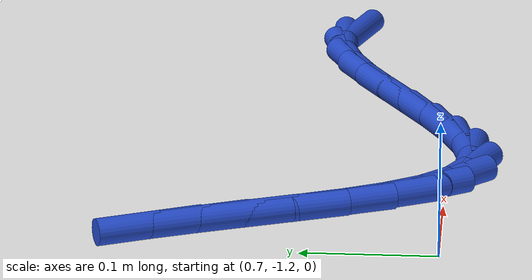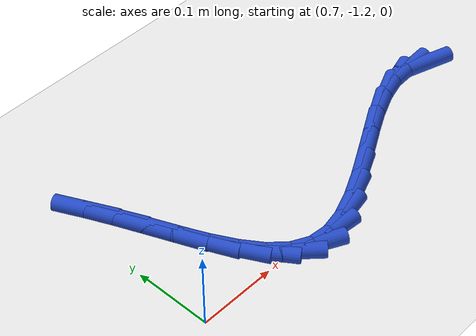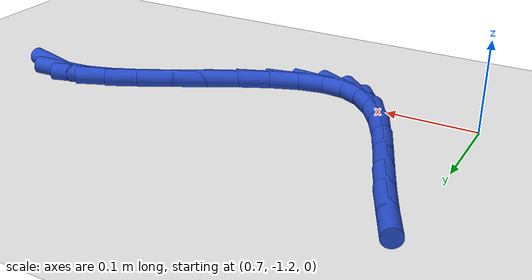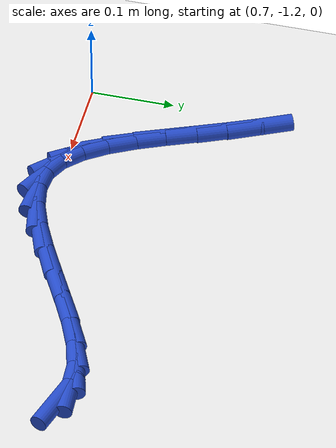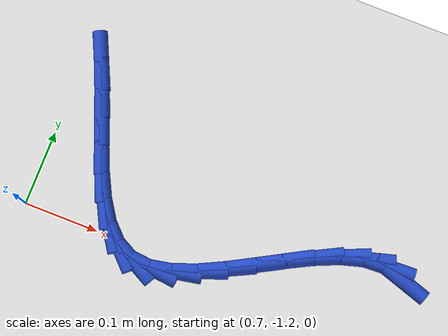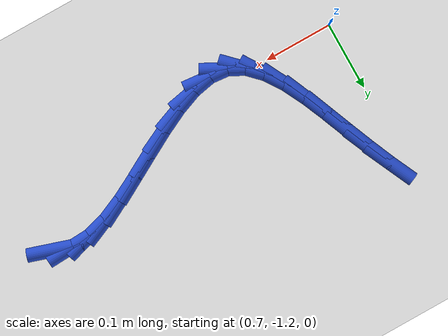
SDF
<sdf version="1.6">
 <world name="default">
  <model name="ground_plane">
   <static>1</static>
   <link name="link">
    <collision name="collision">
     <geometry><plane><normal>0 0 1</normal><size>100 100</size></plane></geometry>
     <surface><friction><ode><mu>100</mu><mu2>50</mu2></ode></friction></surface>
    </collision>
    <visual name="visual">
     <cast_shadows>0</cast_shadows>
     <geometry><plane><normal>0 0 1</normal><size>100 100</size></plane></geometry>
     <material>
      <script><uri>file://media/materials/scripts/gazebo.material</uri><name>Gazebo/WhiteGlow</name></script>
     </material>
    </visual>
   </link>
  </model>
  <model name="line">
   <link name="link_180">
    <pose>1.1868459505623645 -1.1132919554897285 0.01 0 1.57 -0.30919328654308004</pose>
    <collision name="collision">
     <geometry><cylinder><radius>0.01</radius><length>0.08</length></cylinder></geometry>
    </collision>
    <visual name="visual">
     <material>
      <script><name>Gazebo/Blue</name><uri>file://media/materials/scripts/gazebo.material</uri></script>
     </material>
     <geometry><cylinder><radius>0.01</radius><length>0.08</length></cylinder></geometry>
    </visual>
   </link>
   <link name="link_181">
    <pose>1.1626728812645264 -1.1055701526668782 0.01 0 1.57 0.05167769024358564</pose>
    <collision name="collision">
     <geometry><cylinder><radius>0.01</radius><length>0.08</length></cylinder></geometry>
    </collision>
    <visual name="visual">
     <material>
      <script><name>Gazebo/Blue</name><uri>file://media/materials/scripts/gazebo.material</uri></script>
     </material>
     <geometry><cylinder><radius>0.01</radius><length>0.08</length></cylinder></geometry>
    </visual>
   </link>
   <link name="link_182">
    <pose>1.135280985427059 -1.1069869640375274 0.01 0 1.57 0.281228254472593</pose>
    <collision name="collision">
     <geometry><cylinder><radius>0.01</radius><length>0.08</length></cylinder></geometry>
    </collision>
    <visual name="visual">
     <material>
      <script><name>Gazebo/Blue</name><uri>file://media/materials/scripts/gazebo.material</uri></script>
     </material>
     <geometry><cylinder><radius>0.01</radius><length>0.08</length></cylinder></geometry>
    </visual>
   </link>
   <link name="link_183">
    <pose>1.1053389274850371 -1.115636763828797 0.01 0 1.57 0.4136621735092218</pose>
    <collision name="collision">
     <geometry><cylinder><radius>0.01</radius><length>0.08</length></cylinder></geometry>
    </collision>
    <visual name="visual">
     <material>
      <script><name>Gazebo/Blue</name><uri>file://media/materials/scripts/gazebo.material</uri></script>
     </material>
     <geometry><cylinder><radius>0.01</radius><length>0.08</length></cylinder></geometry>
    </visual>
   </link>
   <link name="link_184">
    <pose>1.073518723835023 -1.1296055830971972 0.01 0 1.57 0.48427848371706655</pose>
    <collision name="collision">
     <geometry><cylinder><radius>0.01</radius><length>0.08</length></cylinder></geometry>
    </collision>
    <visual name="visual">
     <material>
      <script><name>Gazebo/Blue</name><uri>file://media/materials/scripts/gazebo.material</uri></script>
     </material>
     <geometry><cylinder><radius>0.01</radius><length>0.08</length></cylinder></geometry>
    </visual>
   </link>
   <link name="link_185">
    <pose>1.0404923908735777 -1.1469794528992379 0.01 0 1.57 0.5120996971491762</pose>
    <collision name="collision">
     <geometry><cylinder><radius>0.01</radius><length>0.08</length></cylinder></geometry>
    </collision>
    <visual name="visual">
     <material>
      <script><name>Gazebo/Blue</name><uri>file://media/materials/scripts/gazebo.material</uri></script>
     </material>
     <geometry><cylinder><radius>0.01</radius><length>0.08</length></cylinder></geometry>
    </visual>
   </link>
   <link name="link_186">
    <pose>1.006931944997266 -1.165844404291428 0.01 0 1.57 0.504212768060236</pose>
    <collision name="collision">
     <geometry><cylinder><radius>0.01</radius><length>0.08</length></cylinder></geometry>
    </collision>
    <visual name="visual">
     <material>
      <script><name>Gazebo/Blue</name><uri>file://media/materials/scripts/gazebo.material</uri></script>
     </material>
     <geometry><cylinder><radius>0.01</radius><length>0.08</length></cylinder></geometry>
    </visual>
   </link>
   <link name="link_187">
    <pose>0.973509402602649 -1.1842864683302778 0.01 0 1.57 0.458702305737399</pose>
    <collision name="collision">
     <geometry><cylinder><radius>0.01</radius><length>0.08</length></cylinder></geometry>
    </collision>
    <visual name="visual">
     <material>
      <script><name>Gazebo/Blue</name><uri>file://media/materials/scripts/gazebo.material</uri></script>
     </material>
     <geometry><cylinder><radius>0.01</radius><length>0.08</length></cylinder></geometry>
    </visual>
   </link>
   <link name="link_188">
    <pose>0.940896780086289 -1.200391676072297 0.01 0 1.57 0.3638407515494402</pose>
    <collision name="collision">
     <geometry><cylinder><radius>0.01</radius><length>0.08</length></cylinder></geometry>
    </collision>
    <visual name="visual">
     <material>
      <script><name>Gazebo/Blue</name><uri>file://media/materials/scripts/gazebo.material</uri></script>
     </material>
     <geometry><cylinder><radius>0.01</radius><length>0.08</length></cylinder></geometry>
    </visual>
   </link>
   <link name="link_189">
    <pose>0.9097660938447483 -1.212246058573995 0.01 0 1.57 0.19388371571299712</pose>
    <collision name="collision">
     <geometry><cylinder><radius>0.01</radius><length>0.08</length></cylinder></geometry>
    </collision>
    <visual name="visual">
     <material>
      <script><name>Gazebo/Blue</name><uri>file://media/materials/scripts/gazebo.material</uri></script>
     </material>
     <geometry><cylinder><radius>0.01</radius><length>0.08</length></cylinder></geometry>
    </visual>
   </link>
   <link name="link_190">
    <pose>0.8807893602745898 -1.2179356468918823 0.01 0 1.57 -0.09110861740454386</pose>
    <collision name="collision">
     <geometry><cylinder><radius>0.01</radius><length>0.08</length></cylinder></geometry>
    </collision>
    <visual name="visual">
     <material>
      <script><name>Gazebo/Blue</name><uri>file://media/materials/scripts/gazebo.material</uri></script>
     </material>
     <geometry><cylinder><radius>0.01</radius><length>0.08</length></cylinder></geometry>
    </visual>
   </link>
   <link name="link_191">
    <pose>0.8546385956149464 -1.2155464725481935 0.01 0 1.57 -0.474656305005728</pose>
    <collision name="collision">
     <geometry><cylinder><radius>0.01</radius><length>0.08</length></cylinder></geometry>
    </collision>
    <visual name="visual">
     <material>
      <script><name>Gazebo/Blue</name><uri>file://media/materials/scripts/gazebo.material</uri></script>
     </material>
     <geometry><cylinder><radius>0.01</radius><length>0.08</length></cylinder></geometry>
    </visual>
   </link>
   <link name="link_192">
    <pose>0.8317721005508508 -1.2037968076965768 0.01 0 1.57 -0.7847811075272215</pose>
    <collision name="collision">
     <geometry><cylinder><radius>0.01</radius><length>0.08</length></cylinder></geometry>
    </collision>
    <visual name="visual">
     <material>
      <script><name>Gazebo/Blue</name><uri>file://media/materials/scripts/gazebo.material</uri></script>
     </material>
     <geometry><cylinder><radius>0.01</radius><length>0.08</length></cylinder></geometry>
    </visual>
   </link>
   <link name="link_193">
    <pose>0.8118163672006559 -1.1838656867670838 0.01 0 1.57 -0.9811080788274306</pose>
    <collision name="collision">
     <geometry><cylinder><radius>0.01</radius><length>0.08</length></cylinder></geometry>
    </collision>
    <visual name="visual">
     <material>
      <script><name>Gazebo/Blue</name><uri>file://media/materials/scripts/gazebo.material</uri></script>
     </material>
     <geometry><cylinder><radius>0.01</radius><length>0.08</length></cylinder></geometry>
    </visual>
   </link>
   <link name="link_194">
    <pose>0.7941955443525524 -1.1575307420567345 0.01 0 1.57 -1.097347651289401</pose>
    <collision name="collision">
     <geometry><cylinder><radius>0.01</radius><length>0.08</length></cylinder></geometry>
    </collision>
    <visual name="visual">
     <material>
      <script><name>Gazebo/Blue</name><uri>file://media/materials/scripts/gazebo.material</uri></script>
     </material>
     <geometry><cylinder><radius>0.01</radius><length>0.08</length></cylinder></geometry>
    </visual>
   </link>
   <link name="link_195">
    <pose>0.7783337807947313 -1.1265696058625476 0.01 0 1.57 -1.1611992471860564</pose>
    <collision name="collision">
     <geometry><cylinder><radius>0.01</radius><length>0.08</length></cylinder></geometry>
    </collision>
    <visual name="visual">
     <material>
      <script><name>Gazebo/Blue</name><uri>file://media/materials/scripts/gazebo.material</uri></script>
     </material>
     <geometry><cylinder><radius>0.01</radius><length>0.08</length></cylinder></geometry>
    </visual>
   </link>
   <link name="link_196">
    <pose>0.7636552253153842 -1.0927599104815444 0.01 0 1.57 -1.1873535882858852</pose>
    <collision name="collision">
     <geometry><cylinder><radius>0.01</radius><length>0.08</length></cylinder></geometry>
    </collision>
    <visual name="visual">
     <material>
      <script><name>Gazebo/Blue</name><uri>file://media/materials/scripts/gazebo.material</uri></script>
     </material>
     <geometry><cylinder><radius>0.01</radius><length>0.08</length></cylinder></geometry>
    </visual>
   </link>
   <link name="link_197">
    <pose>0.7495840267027024 -1.057879288210744 0.01 0 1.57 -1.182004739712267</pose>
    <collision name="collision">
     <geometry><cylinder><radius>0.01</radius><length>0.08</length></cylinder></geometry>
    </collision>
    <visual name="visual">
     <material>
      <script><name>Gazebo/Blue</name><uri>file://media/materials/scripts/gazebo.material</uri></script>
     </material>
     <geometry><cylinder><radius>0.01</radius><length>0.08</length></cylinder></geometry>
    </visual>
   </link>
   <link name="link_198">
    <pose>0.7355596664052891 -1.0236437232327693 0.01 0 1.57 -1.159889041510977</pose>
    <collision name="collision">
     <geometry><cylinder><radius>0.01</radius><length>0.08</length></cylinder></geometry>
    </collision>
    <visual name="visual">
     <material>
      <script><name>Gazebo/Blue</name><uri>file://media/materials/scripts/gazebo.material</uri></script>
     </material>
     <geometry><cylinder><radius>0.01</radius><length>0.08</length></cylinder></geometry>
    </visual>
   </link>
   <link name="link_199">
    <pose>0.7212578230144137 -0.9908195205434345 0.01 0 1.57 -1.1323711394024991</pose>
    <collision name="collision">
     <geometry><cylinder><radius>0.01</radius><length>0.08</length></cylinder></geometry>
    </collision>
    <visual name="visual">
     <material>
      <script><name>Gazebo/Blue</name><uri>file://media/materials/scripts/gazebo.material</uri></script>
     </material>
     <geometry><cylinder><radius>0.01</radius><length>0.08</length></cylinder></geometry>
    </visual>
   </link>
  </model>
 </world>
</sdf>
